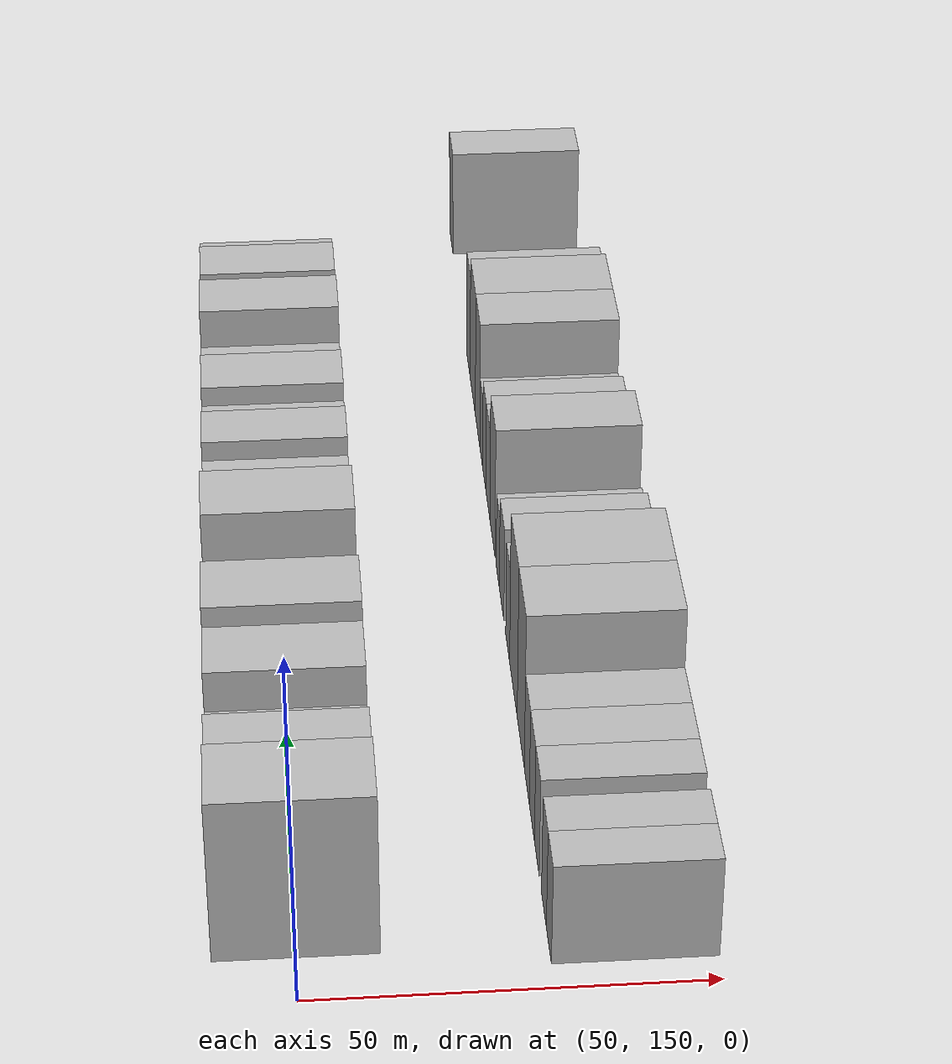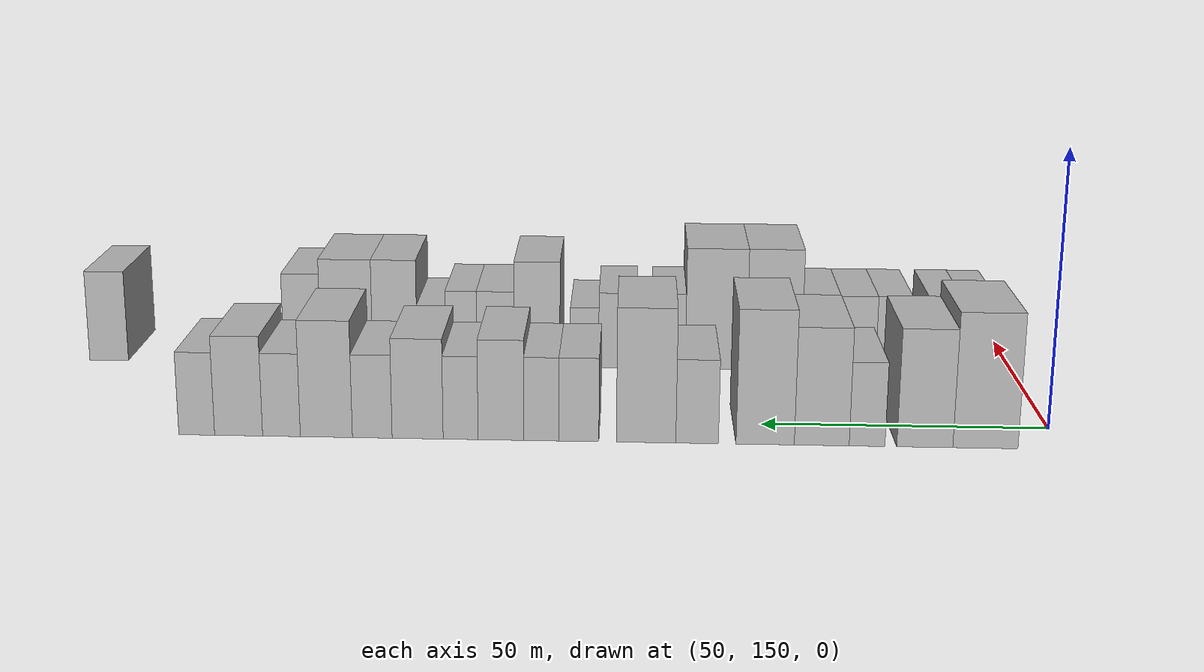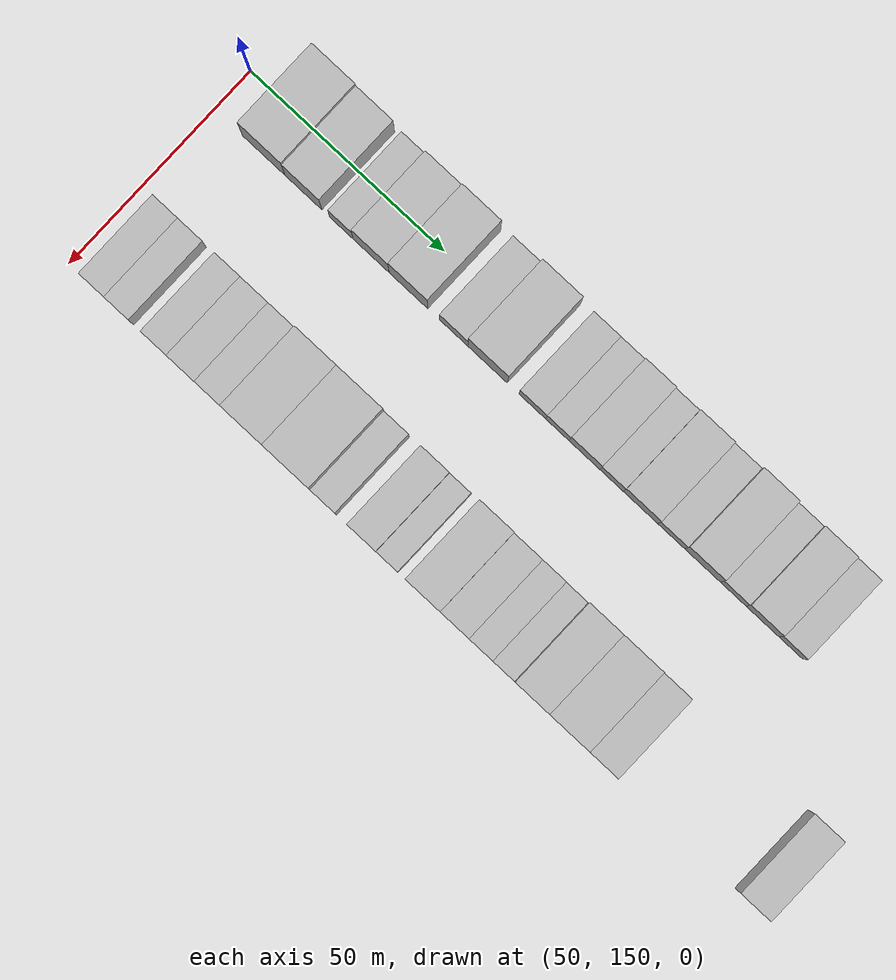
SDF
<sdf version="1.6">
 <world name="default">
  <model name="building_54">
   <static>1</static>
   <pose>50.0000 162.8468 0 0.000000 0.000000 0.000000</pose>
   <link name="link">
    <pose>0 0 12.00 0 0 0</pose>
    <collision name="collision"><geometry><box><size>20.0000 10.9688 24.0000</size></box></geometry></collision>
    <visual name="visual">
     <cast_shadows>0</cast_shadows>
     <geometry><box><size>20.0000 10.9688 24.0000</size></box></geometry>
     <material>
      <script>
       <uri>model://HANNAS_wall/materials/scripts</uri>
       <uri>model://HANNAS_wall/materials/textures</uri>
       <name>vrc/HANNAS_wall</name>
      </script>
     </material>
    </visual>
   </link>
  </model>
  <model name="building_55">
   <static>1</static>
   <pose>50.0000 173.0609 0 0.000000 0.000000 0.000000</pose>
   <link name="link">
    <pose>0 0 10.50 0 0 0</pose>
    <collision name="collision"><geometry><box><size>20.0000 9.4594 21.0000</size></box></geometry></collision>
    <visual name="visual">
     <cast_shadows>0</cast_shadows>
     <geometry><box><size>20.0000 9.4594 21.0000</size></box></geometry>
     <material>
      <script>
       <uri>model://HANNAS_wall/materials/scripts</uri>
       <uri>model://HANNAS_wall/materials/textures</uri>
       <name>vrc/HANNAS_wall</name>
      </script>
     </material>
    </visual>
   </link>
  </model>
  <model name="building_56">
   <static>1</static>
   <pose>50.0000 182.8200 0 0.000000 0.000000 0.000000</pose>
   <link name="link">
    <pose>0 0 7.50 0 0 0</pose>
    <collision name="collision"><geometry><box><size>20.0000 6.0588 15.0000</size></box></geometry></collision>
    <visual name="visual">
     <cast_shadows>0</cast_shadows>
     <geometry><box><size>20.0000 6.0588 15.0000</size></box></geometry>
     <material>
      <script>
       <uri>model://HANNAS_wall/materials/scripts</uri>
       <uri>model://HANNAS_wall/materials/textures</uri>
       <name>vrc/HANNAS_wall</name>
      </script>
     </material>
    </visual>
   </link>
  </model>
  <model name="building_57">
   <static>1</static>
   <pose>50.0000 190.5019 0 0.000000 0.000000 0.000000</pose>
   <link name="link">
    <pose>0 0 10.50 0 0 0</pose>
    <collision name="collision"><geometry><box><size>20.0000 9.3049 21.0000</size></box></geometry></collision>
    <visual name="visual">
     <cast_shadows>0</cast_shadows>
     <geometry><box><size>20.0000 9.3049 21.0000</size></box></geometry>
     <material>
      <script>
       <uri>model://HANNAS_wall/materials/scripts</uri>
       <uri>model://HANNAS_wall/materials/textures</uri>
       <name>vrc/HANNAS_wall</name>
      </script>
     </material>
    </visual>
   </link>
  </model>
  <model name="building_58">
   <static>1</static>
   <pose>50.0000 200.1157 0 0.000000 0.000000 0.000000</pose>
   <link name="link">
    <pose>0 0 12.00 0 0 0</pose>
    <collision name="collision"><geometry><box><size>20.0000 9.9226 24.0000</size></box></geometry></collision>
    <visual name="visual">
     <cast_shadows>0</cast_shadows>
     <geometry><box><size>20.0000 9.9226 24.0000</size></box></geometry>
     <material>
      <script>
       <uri>model://HANNAS_wall/materials/scripts</uri>
       <uri>model://HANNAS_wall/materials/textures</uri>
       <name>vrc/HANNAS_wall</name>
      </script>
     </material>
    </visual>
   </link>
  </model>
  <model name="building_59">
   <static>1</static>
   <pose>50.0000 211.7154 0 0.000000 0.000000 0.000000</pose>
   <link name="link">
    <pose>0 0 7.50 0 0 0</pose>
    <collision name="collision"><geometry><box><size>20.0000 7.2768 15.0000</size></box></geometry></collision>
    <visual name="visual">
     <cast_shadows>0</cast_shadows>
     <geometry><box><size>20.0000 7.2768 15.0000</size></box></geometry>
     <material>
      <script>
       <uri>model://HANNAS_wall/materials/scripts</uri>
       <uri>model://HANNAS_wall/materials/textures</uri>
       <name>vrc/HANNAS_wall</name>
      </script>
     </material>
    </visual>
   </link>
  </model>
  <model name="building_60">
   <static>1</static>
   <pose>50.0000 220.4443 0 0.000000 0.000000 0.000000</pose>
   <link name="link">
    <pose>0 0 12.00 0 0 0</pose>
    <collision name="collision"><geometry><box><size>20.0000 10.1811 24.0000</size></box></geometry></collision>
    <visual name="visual">
     <cast_shadows>0</cast_shadows>
     <geometry><box><size>20.0000 10.1811 24.0000</size></box></geometry>
     <material>
      <script>
       <uri>model://HANNAS_wall/materials/scripts</uri>
       <uri>model://HANNAS_wall/materials/textures</uri>
       <name>vrc/HANNAS_wall</name>
      </script>
     </material>
    </visual>
   </link>
  </model>
  <model name="building_61">
   <static>1</static>
   <pose>50.0000 231.9727 0 0.000000 0.000000 0.000000</pose>
   <link name="link">
    <pose>0 0 7.50 0 0 0</pose>
    <collision name="collision"><geometry><box><size>20.0000 6.8756 15.0000</size></box></geometry></collision>
    <visual name="visual">
     <cast_shadows>0</cast_shadows>
     <geometry><box><size>20.0000 6.8756 15.0000</size></box></geometry>
     <material>
      <script>
       <uri>model://HANNAS_wall/materials/scripts</uri>
       <uri>model://HANNAS_wall/materials/textures</uri>
       <name>vrc/HANNAS_wall</name>
      </script>
     </material>
    </visual>
   </link>
  </model>
  <model name="building_62">
   <static>1</static>
   <pose>50.0000 238.4234 0 0.000000 0.000000 0.000000</pose>
   <link name="link">
    <pose>0 0 7.50 0 0 0</pose>
    <collision name="collision"><geometry><box><size>20.0000 6.0259 15.0000</size></box></geometry></collision>
    <visual name="visual">
     <cast_shadows>0</cast_shadows>
     <geometry><box><size>20.0000 6.0259 15.0000</size></box></geometry>
     <material>
      <script>
       <uri>model://HANNAS_wall/materials/scripts</uri>
       <uri>model://HANNAS_wall/materials/textures</uri>
       <name>vrc/HANNAS_wall</name>
      </script>
     </material>
    </visual>
   </link>
  </model>
  <model name="building_63">
   <static>1</static>
   <pose>50.0000 245.3792 0 0.000000 0.000000 0.000000</pose>
   <link name="link">
    <pose>0 0 9.00 0 0 0</pose>
    <collision name="collision"><geometry><box><size>20.0000 7.8857 18.0000</size></box></geometry></collision>
    <visual name="visual">
     <cast_shadows>0</cast_shadows>
     <geometry><box><size>20.0000 7.8857 18.0000</size></box></geometry>
     <material>
      <script>
       <uri>model://HANNAS_wall/materials/scripts</uri>
       <uri>model://HANNAS_wall/materials/textures</uri>
       <name>vrc/HANNAS_wall</name>
      </script>
     </material>
    </visual>
   </link>
  </model>
  <model name="building_64">
   <static>1</static>
   <pose>50.0000 252.3377 0 0.000000 0.000000 0.000000</pose>
   <link name="link">
    <pose>0 0 7.50 0 0 0</pose>
    <collision name="collision"><geometry><box><size>20.0000 6.0313 15.0000</size></box></geometry></collision>
    <visual name="visual">
     <cast_shadows>0</cast_shadows>
     <geometry><box><size>20.0000 6.0313 15.0000</size></box></geometry>
     <material>
      <script>
       <uri>model://HANNAS_wall/materials/scripts</uri>
       <uri>model://HANNAS_wall/materials/textures</uri>
       <name>vrc/HANNAS_wall</name>
      </script>
     </material>
    </visual>
   </link>
  </model>
  <model name="building_65">
   <static>1</static>
   <pose>50.0000 259.7710 0 0.000000 0.000000 0.000000</pose>
   <link name="link">
    <pose>0 0 9.00 0 0 0</pose>
    <collision name="collision"><geometry><box><size>20.0000 8.8353 18.0000</size></box></geometry></collision>
    <visual name="visual">
     <cast_shadows>0</cast_shadows>
     <geometry><box><size>20.0000 8.8353 18.0000</size></box></geometry>
     <material>
      <script>
       <uri>model://HANNAS_wall/materials/scripts</uri>
       <uri>model://HANNAS_wall/materials/textures</uri>
       <name>vrc/HANNAS_wall</name>
      </script>
     </material>
    </visual>
   </link>
  </model>
  <model name="building_66">
   <static>1</static>
   <pose>50.0000 267.6369 0 0.000000 0.000000 0.000000</pose>
   <link name="link">
    <pose>0 0 7.50 0 0 0</pose>
    <collision name="collision"><geometry><box><size>20.0000 6.8966 15.0000</size></box></geometry></collision>
    <visual name="visual">
     <cast_shadows>0</cast_shadows>
     <geometry><box><size>20.0000 6.8966 15.0000</size></box></geometry>
     <material>
      <script>
       <uri>model://HANNAS_wall/materials/scripts</uri>
       <uri>model://HANNAS_wall/materials/textures</uri>
       <name>vrc/HANNAS_wall</name>
      </script>
     </material>
    </visual>
   </link>
  </model>
  <model name="building_67">
   <static>1</static>
   <pose>50.0000 275.6158 0 0.000000 0.000000 0.000000</pose>
   <link name="link">
    <pose>0 0 10.50 0 0 0</pose>
    <collision name="collision"><geometry><box><size>20.0000 9.0612 21.0000</size></box></geometry></collision>
    <visual name="visual">
     <cast_shadows>0</cast_shadows>
     <geometry><box><size>20.0000 9.0612 21.0000</size></box></geometry>
     <material>
      <script>
       <uri>model://HANNAS_wall/materials/scripts</uri>
       <uri>model://HANNAS_wall/materials/textures</uri>
       <name>vrc/HANNAS_wall</name>
      </script>
     </material>
    </visual>
   </link>
  </model>
  <model name="building_68">
   <static>1</static>
   <pose>50.0000 283.4367 0 0.000000 0.000000 0.000000</pose>
   <link name="link">
    <pose>0 0 7.50 0 0 0</pose>
    <collision name="collision"><geometry><box><size>20.0000 6.5805 15.0000</size></box></geometry></collision>
    <visual name="visual">
     <cast_shadows>0</cast_shadows>
     <geometry><box><size>20.0000 6.5805 15.0000</size></box></geometry>
     <material>
      <script>
       <uri>model://HANNAS_wall/materials/scripts</uri>
       <uri>model://HANNAS_wall/materials/textures</uri>
       <name>vrc/HANNAS_wall</name>
      </script>
     </material>
    </visual>
   </link>
  </model>
  <model name="building_69">
   <static>1</static>
   <pose>50.0000 290.9221 0 0.000000 0.000000 0.000000</pose>
   <link name="link">
    <pose>0 0 9.00 0 0 0</pose>
    <collision name="collision"><geometry><box><size>20.0000 8.3903 18.0000</size></box></geometry></collision>
    <visual name="visual">
     <cast_shadows>0</cast_shadows>
     <geometry><box><size>20.0000 8.3903 18.0000</size></box></geometry>
     <material>
      <script>
       <uri>model://HANNAS_wall/materials/scripts</uri>
       <uri>model://HANNAS_wall/materials/textures</uri>
       <name>vrc/HANNAS_wall</name>
      </script>
     </material>
    </visual>
   </link>
  </model>
  <model name="building_70">
   <static>1</static>
   <pose>50.0000 298.2505 0 0.000000 0.000000 0.000000</pose>
   <link name="link">
    <pose>0 0 7.50 0 0 0</pose>
    <collision name="collision"><geometry><box><size>20.0000 6.2666 15.0000</size></box></geometry></collision>
    <visual name="visual">
     <cast_shadows>0</cast_shadows>
     <geometry><box><size>20.0000 6.2666 15.0000</size></box></geometry>
     <material>
      <script>
       <uri>model://HANNAS_wall/materials/scripts</uri>
       <uri>model://HANNAS_wall/materials/textures</uri>
       <name>vrc/HANNAS_wall</name>
      </script>
     </material>
    </visual>
   </link>
  </model>
  <model name="building_120">
   <static>1</static>
   <pose>90.0000 157.2934 0 0.000000 0.000000 0.000000</pose>
   <link name="link">
    <pose>0 0 7.50 0 0 0</pose>
    <collision name="collision"><geometry><box><size>20.0000 6.3876 15.0000</size></box></geometry></collision>
    <visual name="visual">
     <cast_shadows>0</cast_shadows>
     <geometry><box><size>20.0000 6.3876 15.0000</size></box></geometry>
     <material>
      <script>
       <uri>model://HANNAS_wall/materials/scripts</uri>
       <uri>model://HANNAS_wall/materials/textures</uri>
       <name>vrc/HANNAS_wall</name>
      </script>
     </material>
    </visual>
   </link>
  </model>
  <model name="building_121">
   <static>1</static>
   <pose>90.0000 163.6279 0 0.000000 0.000000 0.000000</pose>
   <link name="link">
    <pose>0 0 7.50 0 0 0</pose>
    <collision name="collision"><geometry><box><size>20.0000 6.2815 15.0000</size></box></geometry></collision>
    <visual name="visual">
     <cast_shadows>0</cast_shadows>
     <geometry><box><size>20.0000 6.2815 15.0000</size></box></geometry>
     <material>
      <script>
       <uri>model://HANNAS_wall/materials/scripts</uri>
       <uri>model://HANNAS_wall/materials/textures</uri>
       <name>vrc/HANNAS_wall</name>
      </script>
     </material>
    </visual>
   </link>
  </model>
  <model name="building_122">
   <static>1</static>
   <pose>90.0000 173.0417 0 0.000000 0.000000 0.000000</pose>
   <link name="link">
    <pose>0 0 7.50 0 0 0</pose>
    <collision name="collision"><geometry><box><size>20.0000 6.5460 15.0000</size></box></geometry></collision>
    <visual name="visual">
     <cast_shadows>0</cast_shadows>
     <geometry><box><size>20.0000 6.5460 15.0000</size></box></geometry>
     <material>
      <script>
       <uri>model://HANNAS_wall/materials/scripts</uri>
       <uri>model://HANNAS_wall/materials/textures</uri>
       <name>vrc/HANNAS_wall</name>
      </script>
     </material>
    </visual>
   </link>
  </model>
  <model name="building_123">
   <static>1</static>
   <pose>90.0000 179.8516 0 0.000000 0.000000 0.000000</pose>
   <link name="link">
    <pose>0 0 7.50 0 0 0</pose>
    <collision name="collision"><geometry><box><size>20.0000 7.0739 15.0000</size></box></geometry></collision>
    <visual name="visual">
     <cast_shadows>0</cast_shadows>
     <geometry><box><size>20.0000 7.0739 15.0000</size></box></geometry>
     <material>
      <script>
       <uri>model://HANNAS_wall/materials/scripts</uri>
       <uri>model://HANNAS_wall/materials/textures</uri>
       <name>vrc/HANNAS_wall</name>
      </script>
     </material>
    </visual>
   </link>
  </model>
  <model name="building_124">
   <static>1</static>
   <pose>90.0000 186.9443 0 0.000000 0.000000 0.000000</pose>
   <link name="link">
    <pose>0 0 7.50 0 0 0</pose>
    <collision name="collision"><geometry><box><size>20.0000 7.1115 15.0000</size></box></geometry></collision>
    <visual name="visual">
     <cast_shadows>0</cast_shadows>
     <geometry><box><size>20.0000 7.1115 15.0000</size></box></geometry>
     <material>
      <script>
       <uri>model://HANNAS_wall/materials/scripts</uri>
       <uri>model://HANNAS_wall/materials/textures</uri>
       <name>vrc/HANNAS_wall</name>
      </script>
     </material>
    </visual>
   </link>
  </model>
  <model name="building_125">
   <static>1</static>
   <pose>90.0000 195.7588 0 0.000000 0.000000 0.000000</pose>
   <link name="link">
    <pose>0 0 12.00 0 0 0</pose>
    <collision name="collision"><geometry><box><size>20.0000 10.5176 24.0000</size></box></geometry></collision>
    <visual name="visual">
     <cast_shadows>0</cast_shadows>
     <geometry><box><size>20.0000 10.5176 24.0000</size></box></geometry>
     <material>
      <script>
       <uri>model://HANNAS_wall/materials/scripts</uri>
       <uri>model://HANNAS_wall/materials/textures</uri>
       <name>vrc/HANNAS_wall</name>
      </script>
     </material>
    </visual>
   </link>
  </model>
  <model name="building_126">
   <static>1</static>
   <pose>90.0000 206.8701 0 0.000000 0.000000 0.000000</pose>
   <link name="link">
    <pose>0 0 12.00 0 0 0</pose>
    <collision name="collision"><geometry><box><size>20.0000 11.7050 24.0000</size></box></geometry></collision>
    <visual name="visual">
     <cast_shadows>0</cast_shadows>
     <geometry><box><size>20.0000 11.7050 24.0000</size></box></geometry>
     <material>
      <script>
       <uri>model://HANNAS_wall/materials/scripts</uri>
       <uri>model://HANNAS_wall/materials/textures</uri>
       <name>vrc/HANNAS_wall</name>
      </script>
     </material>
    </visual>
   </link>
  </model>
  <model name="building_127">
   <static>1</static>
   <pose>90.0000 215.8851 0 0.000000 0.000000 0.000000</pose>
   <link name="link">
    <pose>0 0 7.50 0 0 0</pose>
    <collision name="collision"><geometry><box><size>20.0000 6.3249 15.0000</size></box></geometry></collision>
    <visual name="visual">
     <cast_shadows>0</cast_shadows>
     <geometry><box><size>20.0000 6.3249 15.0000</size></box></geometry>
     <material>
      <script>
       <uri>model://HANNAS_wall/materials/scripts</uri>
       <uri>model://HANNAS_wall/materials/textures</uri>
       <name>vrc/HANNAS_wall</name>
      </script>
     </material>
    </visual>
   </link>
  </model>
  <model name="building_128">
   <static>1</static>
   <pose>90.0000 225.7334 0 0.000000 0.000000 0.000000</pose>
   <link name="link">
    <pose>0 0 7.50 0 0 0</pose>
    <collision name="collision"><geometry><box><size>20.0000 7.3717 15.0000</size></box></geometry></collision>
    <visual name="visual">
     <cast_shadows>0</cast_shadows>
     <geometry><box><size>20.0000 7.3717 15.0000</size></box></geometry>
     <material>
      <script>
       <uri>model://HANNAS_wall/materials/scripts</uri>
       <uri>model://HANNAS_wall/materials/textures</uri>
       <name>vrc/HANNAS_wall</name>
      </script>
     </material>
    </visual>
   </link>
  </model>
  <model name="building_129">
   <static>1</static>
   <pose>90.0000 232.1577 0 0.000000 0.000000 0.000000</pose>
   <link name="link">
    <pose>0 0 6.00 0 0 0</pose>
    <collision name="collision"><geometry><box><size>20.0000 5.4769 12.0000</size></box></geometry></collision>
    <visual name="visual">
     <cast_shadows>0</cast_shadows>
     <geometry><box><size>20.0000 5.4769 12.0000</size></box></geometry>
     <material>
      <script>
       <uri>model://HANNAS_wall/materials/scripts</uri>
       <uri>model://HANNAS_wall/materials/textures</uri>
       <name>vrc/HANNAS_wall</name>
      </script>
     </material>
    </visual>
   </link>
  </model>
  <model name="building_130">
   <static>1</static>
   <pose>90.0000 241.3130 0 0.000000 0.000000 0.000000</pose>
   <link name="link">
    <pose>0 0 10.50 0 0 0</pose>
    <collision name="collision"><geometry><box><size>20.0000 8.8336 21.0000</size></box></geometry></collision>
    <visual name="visual">
     <cast_shadows>0</cast_shadows>
     <geometry><box><size>20.0000 8.8336 21.0000</size></box></geometry>
     <material>
      <script>
       <uri>model://HANNAS_wall/materials/scripts</uri>
       <uri>model://HANNAS_wall/materials/textures</uri>
       <name>vrc/HANNAS_wall</name>
      </script>
     </material>
    </visual>
   </link>
  </model>
  <model name="building_131">
   <static>1</static>
   <pose>90.0000 249.3678 0 0.000000 0.000000 0.000000</pose>
   <link name="link">
    <pose>0 0 7.50 0 0 0</pose>
    <collision name="collision"><geometry><box><size>20.0000 7.2760 15.0000</size></box></geometry></collision>
    <visual name="visual">
     <cast_shadows>0</cast_shadows>
     <geometry><box><size>20.0000 7.2760 15.0000</size></box></geometry>
     <material>
      <script>
       <uri>model://HANNAS_wall/materials/scripts</uri>
       <uri>model://HANNAS_wall/materials/textures</uri>
       <name>vrc/HANNAS_wall</name>
      </script>
     </material>
    </visual>
   </link>
  </model>
  <model name="building_132">
   <static>1</static>
   <pose>90.0000 256.0085 0 0.000000 0.000000 0.000000</pose>
   <link name="link">
    <pose>0 0 7.50 0 0 0</pose>
    <collision name="collision"><geometry><box><size>20.0000 6.0055 15.0000</size></box></geometry></collision>
    <visual name="visual">
     <cast_shadows>0</cast_shadows>
     <geometry><box><size>20.0000 6.0055 15.0000</size></box></geometry>
     <material>
      <script>
       <uri>model://HANNAS_wall/materials/scripts</uri>
       <uri>model://HANNAS_wall/materials/textures</uri>
       <name>vrc/HANNAS_wall</name>
      </script>
     </material>
    </visual>
   </link>
  </model>
  <model name="building_133">
   <static>1</static>
   <pose>90.0000 261.7937 0 0.000000 0.000000 0.000000</pose>
   <link name="link">
    <pose>0 0 6.00 0 0 0</pose>
    <collision name="collision"><geometry><box><size>20.0000 5.5649 12.0000</size></box></geometry></collision>
    <visual name="visual">
     <cast_shadows>0</cast_shadows>
     <geometry><box><size>20.0000 5.5649 12.0000</size></box></geometry>
     <material>
      <script>
       <uri>model://HANNAS_wall/materials/scripts</uri>
       <uri>model://HANNAS_wall/materials/textures</uri>
       <name>vrc/HANNAS_wall</name>
      </script>
     </material>
    </visual>
   </link>
  </model>
  <model name="building_134">
   <static>1</static>
   <pose>90.0000 268.9160 0 0.000000 0.000000 0.000000</pose>
   <link name="link">
    <pose>0 0 10.50 0 0 0</pose>
    <collision name="collision"><geometry><box><size>20.0000 8.6796 21.0000</size></box></geometry></collision>
    <visual name="visual">
     <cast_shadows>0</cast_shadows>
     <geometry><box><size>20.0000 8.6796 21.0000</size></box></geometry>
     <material>
      <script>
       <uri>model://HANNAS_wall/materials/scripts</uri>
       <uri>model://HANNAS_wall/materials/textures</uri>
       <name>vrc/HANNAS_wall</name>
      </script>
     </material>
    </visual>
   </link>
  </model>
  <model name="building_135">
   <static>1</static>
   <pose>90.0000 278.3141 0 0.000000 0.000000 0.000000</pose>
   <link name="link">
    <pose>0 0 10.50 0 0 0</pose>
    <collision name="collision"><geometry><box><size>20.0000 10.1166 21.0000</size></box></geometry></collision>
    <visual name="visual">
     <cast_shadows>0</cast_shadows>
     <geometry><box><size>20.0000 10.1166 21.0000</size></box></geometry>
     <material>
      <script>
       <uri>model://HANNAS_wall/materials/scripts</uri>
       <uri>model://HANNAS_wall/materials/textures</uri>
       <name>vrc/HANNAS_wall</name>
      </script>
     </material>
    </visual>
   </link>
  </model>
  <model name="building_136">
   <static>1</static>
   <pose>90.0000 287.0157 0 0.000000 0.000000 0.000000</pose>
   <link name="link">
    <pose>0 0 9.00 0 0 0</pose>
    <collision name="collision"><geometry><box><size>20.0000 7.2866 18.0000</size></box></geometry></collision>
    <visual name="visual">
     <cast_shadows>0</cast_shadows>
     <geometry><box><size>20.0000 7.2866 18.0000</size></box></geometry>
     <material>
      <script>
       <uri>model://HANNAS_wall/materials/scripts</uri>
       <uri>model://HANNAS_wall/materials/textures</uri>
       <name>vrc/HANNAS_wall</name>
      </script>
     </material>
    </visual>
   </link>
  </model>
  <model name="building_137">
   <static>1</static>
   <pose>90.0000 325.1508 0 0.000000 0.000000 0.000000</pose>
   <link name="link">
    <pose>0 0 9.00 0 0 0</pose>
    <collision name="collision"><geometry><box><size>20.0000 7.6612 18.0000</size></box></geometry></collision>
    <visual name="visual">
     <cast_shadows>0</cast_shadows>
     <geometry><box><size>20.0000 7.6612 18.0000</size></box></geometry>
     <material>
      <script>
       <uri>model://HANNAS_wall/materials/scripts</uri>
       <uri>model://HANNAS_wall/materials/textures</uri>
       <name>vrc/HANNAS_wall</name>
      </script>
     </material>
    </visual>
   </link>
  </model>
 </world>
</sdf>
